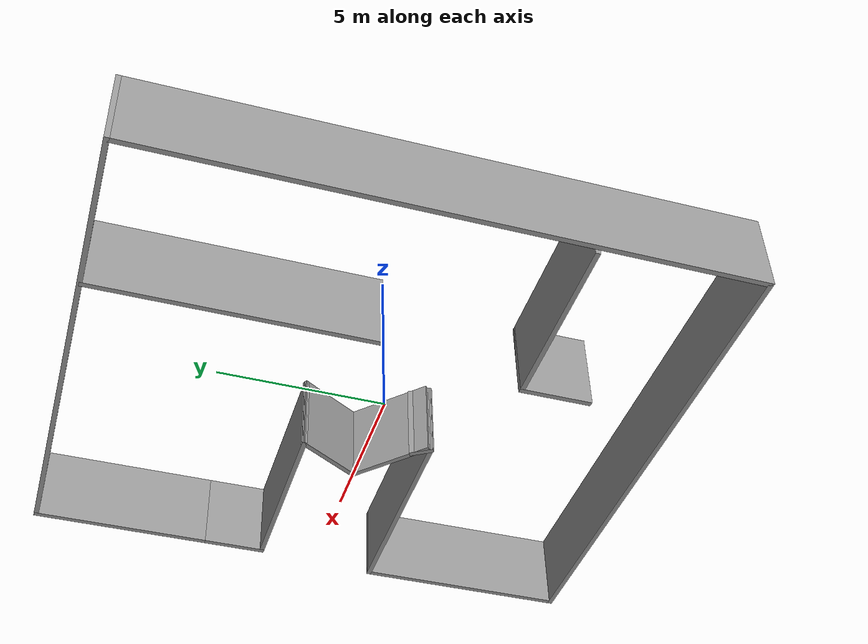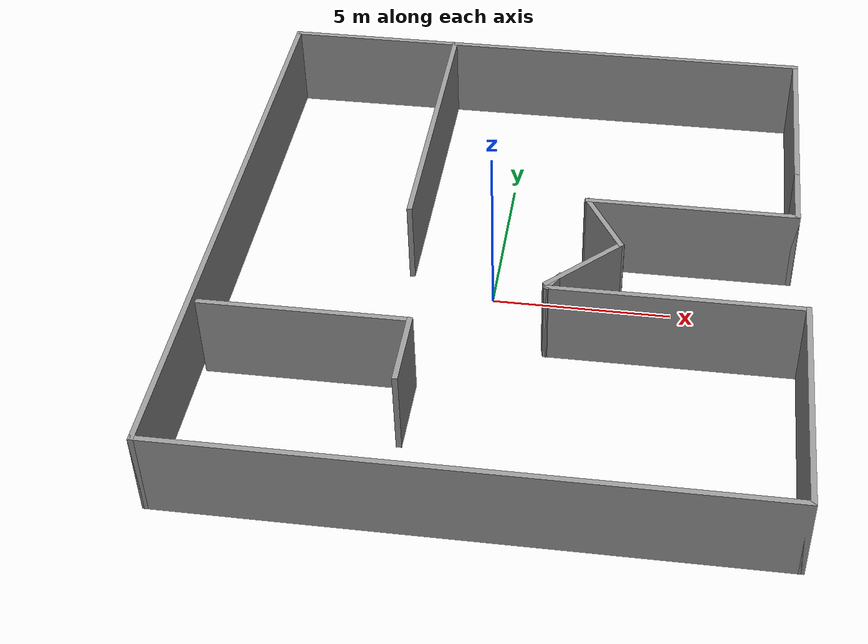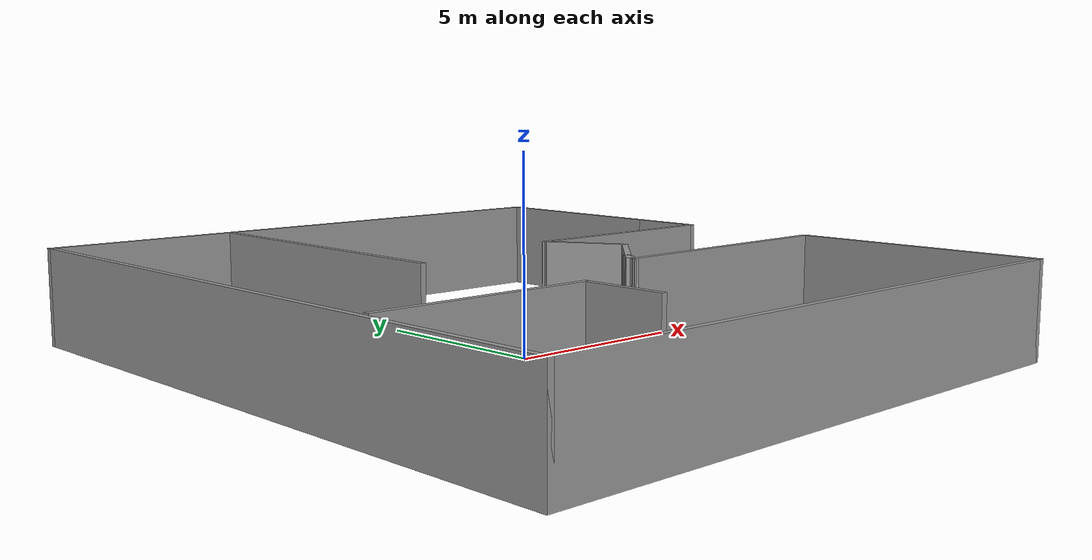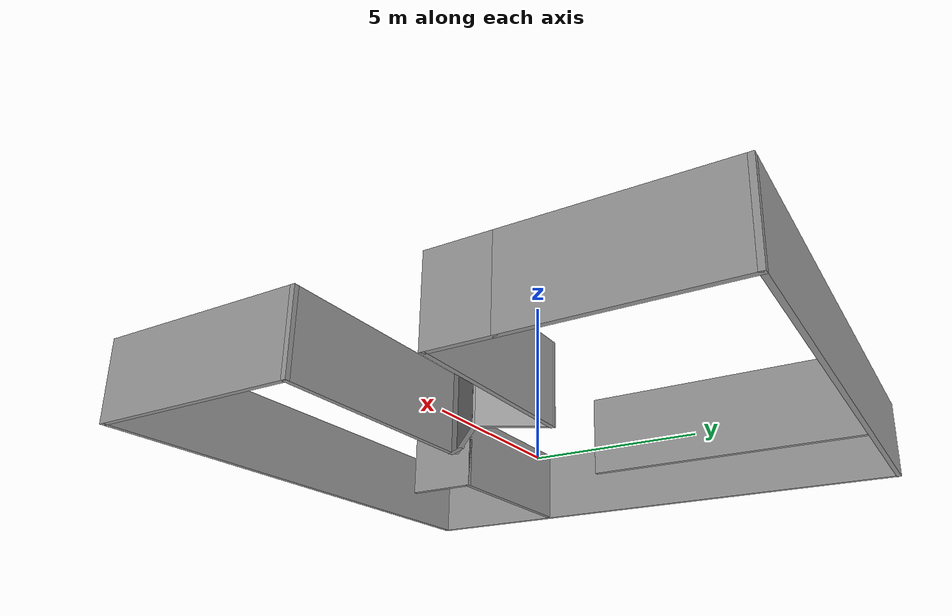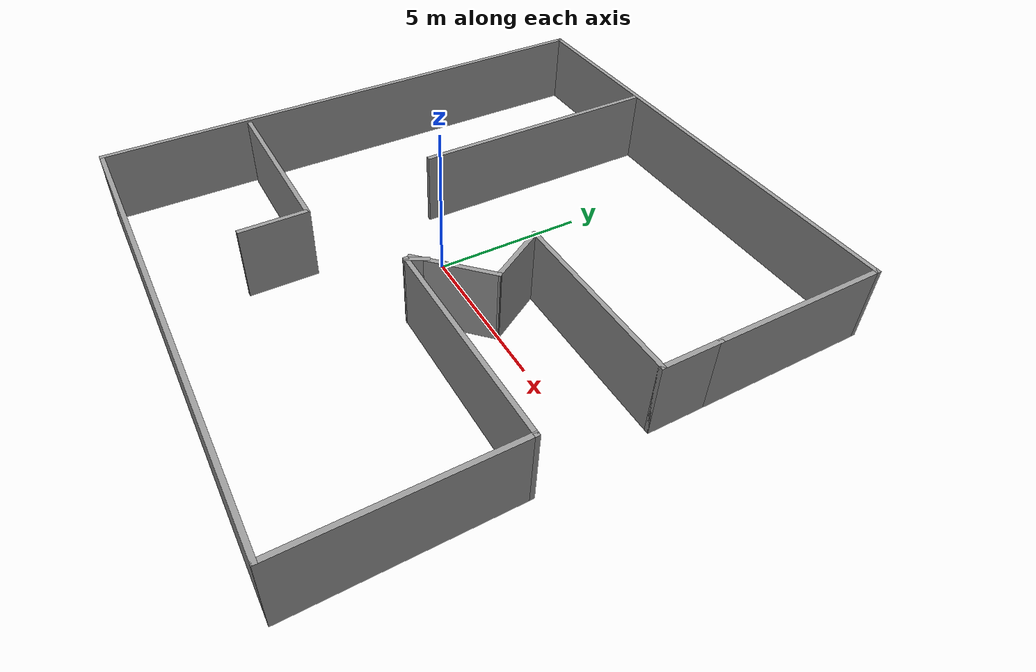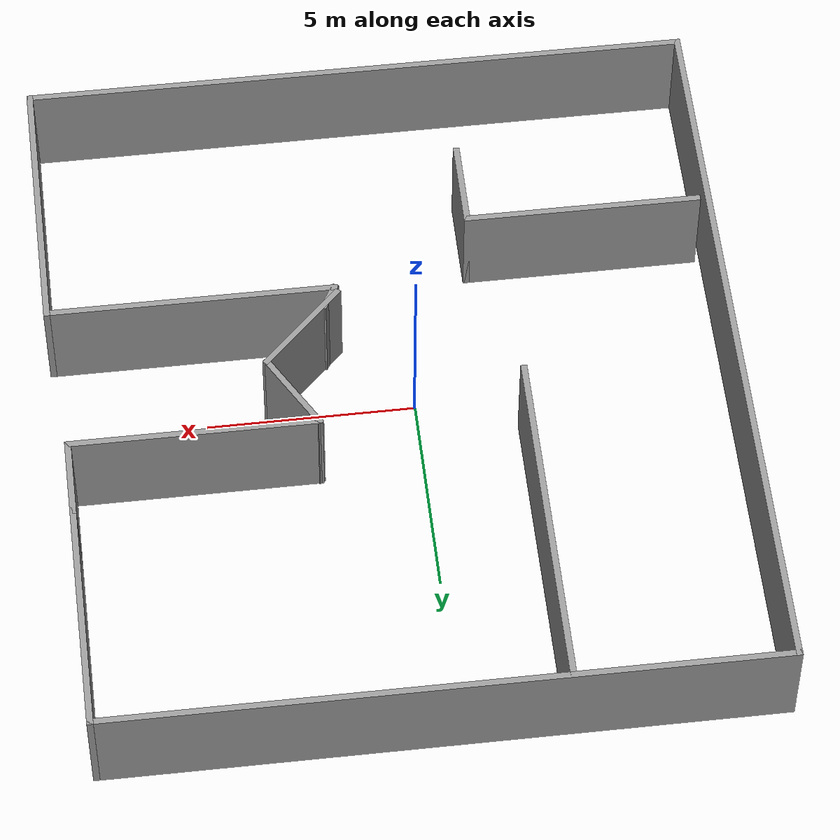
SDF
<?xml version='1.0'?>
<sdf version='1.6'>
  <model name='office'>
    <pose frame=''>0.508477 0.332131 0 0 -0 0</pose>
    <link name='Wall_1'>
      <collision name='Wall_1_Collision'>
        <geometry>
          <box>
            <size>2.75 0.15 2.5</size>
          </box>
        </geometry>
        <pose frame=''>0 0 1.25 0 -0 0</pose>
      </collision>
      <visual name='Wall_1_Visual'>
        <pose frame=''>0 0 1.25 0 -0 0</pose>
        <geometry>
          <box>
            <size>2.75 0.15 2.5</size>
          </box>
        </geometry>
        <material>
          <script>
            <uri>file://media/materials/scripts/gazebo.material</uri>
            <name>Gazebo/Grey</name>
          </script>
          <ambient>1 1 1 1</ambient>
        </material>
      </visual>
      <pose frame=''>2.08076 -1.26289 0 0 -0 0.785398</pose>
    </link>
    <link name='Wall_10'>
      <collision name='Wall_10_Collision'>
        <geometry>
          <box>
            <size>7 0.15 2.5</size>
          </box>
        </geometry>
        <pose frame=''>0 0 1.25 0 -0 0</pose>
      </collision>
      <visual name='Wall_10_Visual'>
        <pose frame=''>0 0 1.25 0 -0 0</pose>
        <geometry>
          <box>
            <size>7 0.15 2.5</size>
          </box>
        </geometry>
        <material>
          <script>
            <uri>file://media/materials/scripts/gazebo.material</uri>
            <name>Gazebo/Grey</name>
          </script>
          <ambient>1 1 1 1</ambient>
        </material>
      </visual>
      <pose frame=''>4.625 -2.325 0 0 -0 3.14159</pose>
    </link>
    <link name='Wall_11'>
      <collision name='Wall_11_Collision'>
        <geometry>
          <box>
            <size>0.75 0.15 2.5</size>
          </box>
        </geometry>
        <pose frame=''>0 0 1.25 0 -0 0</pose>
      </collision>
      <visual name='Wall_11_Visual'>
        <pose frame=''>0 0 1.25 0 -0 0</pose>
        <geometry>
          <box>
            <size>0.75 0.15 2.5</size>
          </box>
        </geometry>
        <material>
          <script>
            <uri>file://media/materials/scripts/gazebo.material</uri>
            <name>Gazebo/Grey</name>
          </script>
          <ambient>1 1 1 1</ambient>
        </material>
      </visual>
      <pose frame=''>1.35 -2.06519 0 0 -0 1.0472</pose>
    </link>
    <link name='Wall_13'>
      <collision name='Wall_13_Collision'>
        <geometry>
          <box>
            <size>8.5 0.15 2.5</size>
          </box>
        </geometry>
        <pose frame=''>0 0 1.25 0 -0 0</pose>
      </collision>
      <visual name='Wall_13_Visual'>
        <pose frame=''>0 0 1.25 0 -0 0</pose>
        <geometry>
          <box>
            <size>8.5 0.15 2.5</size>
          </box>
        </geometry>
        <material>
          <script>
            <uri>file://media/materials/scripts/gazebo.material</uri>
            <name>Gazebo/Grey</name>
          </script>
          <ambient>1 1 1 1</ambient>
        </material>
      </visual>
      <pose frame=''>-2.96935 4.69042 0 0 0 -1.5708</pose>
    </link>
    <link name='Wall_15'>
      <collision name='Wall_15_Collision'>
        <geometry>
          <box>
            <size>5.75 0.15 2.5</size>
          </box>
        </geometry>
        <pose frame=''>0 0 1.25 0 -0 0</pose>
      </collision>
      <visual name='Wall_15_Visual'>
        <pose frame=''>0 0 1.25 0 -0 0</pose>
        <geometry>
          <box>
            <size>5.75 0.15 2.5</size>
          </box>
        </geometry>
        <material>
          <script>
            <uri>file://media/materials/scripts/gazebo.material</uri>
            <name>Gazebo/Grey</name>
          </script>
          <ambient>1 1 1 1</ambient>
        </material>
      </visual>
      <pose frame=''>-4.98083 -4.01237 0 0 -0 0</pose>
    </link>
    <link name='Wall_16'>
      <collision name='Wall_16_Collision'>
        <geometry>
          <box>
            <size>2.25 0.15 2.5</size>
          </box>
        </geometry>
        <pose frame=''>0 0 1.25 0 -0 0</pose>
      </collision>
      <visual name='Wall_16_Visual'>
        <pose frame=''>0 0 1.25 0 -0 0</pose>
        <geometry>
          <box>
            <size>2.25 0.15 2.5</size>
          </box>
        </geometry>
        <material>
          <script>
            <uri>file://media/materials/scripts/gazebo.material</uri>
            <name>Gazebo/Grey</name>
          </script>
          <ambient>1 1 1 1</ambient>
        </material>
      </visual>
      <pose frame=''>-2.18083 -5.06237 0 0 0 -1.5708</pose>
    </link>
    <link name='Wall_2'>
      <collision name='Wall_2_Collision'>
        <geometry>
          <box>
            <size>2.25 0.15 2.5</size>
          </box>
        </geometry>
        <pose frame=''>0 0 1.25 0 -0 0</pose>
      </collision>
      <visual name='Wall_2_Visual'>
        <pose frame=''>0 0 1.25 0 -0 0</pose>
        <geometry>
          <box>
            <size>2.25 0.15 2.5</size>
          </box>
        </geometry>
        <material>
          <script>
            <uri>file://media/materials/scripts/gazebo.material</uri>
            <name>Gazebo/Grey</name>
          </script>
          <ambient>1 1 1 1</ambient>
        </material>
      </visual>
      <pose frame=''>2.475 0.565673 0 0 -0 2.0944</pose>
    </link>
    <link name='Wall_3'>
      <collision name='Wall_3_Collision'>
        <geometry>
          <box>
            <size>6 0.15 2.5</size>
          </box>
        </geometry>
        <pose frame=''>0 0 1.25 0 -0 0</pose>
      </collision>
      <visual name='Wall_3_Visual'>
        <pose frame=''>0 0 1.25 0 -0 0</pose>
        <geometry>
          <box>
            <size>6 0.15 2.5</size>
          </box>
        </geometry>
        <material>
          <script>
            <uri>file://media/materials/scripts/gazebo.material</uri>
            <name>Gazebo/Grey</name>
          </script>
          <ambient>1 1 1 1</ambient>
        </material>
      </visual>
      <pose frame=''>4.875 1.475 0 0 -0 0</pose>
    </link>
    <link name='Wall_4'>
      <collision name='Wall_4_Collision'>
        <geometry>
          <box>
            <size>2 0.15 2.5</size>
          </box>
        </geometry>
        <pose frame=''>0 0 1.25 0 -0 0</pose>
      </collision>
      <visual name='Wall_4_Visual'>
        <pose frame=''>0 0 1.25 0 -0 0</pose>
        <geometry>
          <box>
            <size>2 0.15 2.5</size>
          </box>
        </geometry>
        <material>
          <script>
            <uri>file://media/materials/scripts/gazebo.material</uri>
            <name>Gazebo/Grey</name>
          </script>
          <ambient>1 1 1 1</ambient>
        </material>
      </visual>
      <pose frame=''>7.8 2.4 0 0 -0 1.5708</pose>
    </link>
    <link name='Wall_5'>
      <collision name='Wall_5_Collision'>
        <geometry>
          <box>
            <size>5.75 0.15 2.5</size>
          </box>
        </geometry>
        <pose frame=''>0 0 1.25 0 -0 0</pose>
      </collision>
      <visual name='Wall_5_Visual'>
        <pose frame=''>0 0 1.25 0 -0 0</pose>
        <geometry>
          <box>
            <size>5.75 0.15 2.5</size>
          </box>
        </geometry>
        <material>
          <script>
            <uri>file://media/materials/scripts/gazebo.material</uri>
            <name>Gazebo/Grey</name>
          </script>
          <ambient>1 1 1 1</ambient>
        </material>
      </visual>
      <pose frame=''>7.8 6.125 0 0 -0 1.5708</pose>
    </link>
    <link name='Wall_6'>
      <collision name='Wall_6_Collision'>
        <geometry>
          <box>
            <size>16 0.15 2.5</size>
          </box>
        </geometry>
        <pose frame=''>0 0 1.25 0 -0 0</pose>
      </collision>
      <visual name='Wall_6_Visual'>
        <pose frame=''>0 0 1.25 0 -0 0</pose>
        <geometry>
          <box>
            <size>16 0.15 2.5</size>
          </box>
        </geometry>
        <material>
          <script>
            <uri>file://media/materials/scripts/gazebo.material</uri>
            <name>Gazebo/Grey</name>
          </script>
          <ambient>1 1 1 1</ambient>
        </material>
      </visual>
      <pose frame=''>-0.125 8.925 0 0 -0 3.14159</pose>
    </link>
    <link name='Wall_7'>
      <collision name='Wall_7_Collision'>
        <geometry>
          <box>
            <size>18 0.15 2.5</size>
          </box>
        </geometry>
        <pose frame=''>0 0 1.25 0 -0 0</pose>
      </collision>
      <visual name='Wall_7_Visual'>
        <pose frame=''>0 0 1.25 0 -0 0</pose>
        <geometry>
          <box>
            <size>18 0.15 2.5</size>
          </box>
        </geometry>
        <material>
          <script>
            <uri>file://media/materials/scripts/gazebo.material</uri>
            <name>Gazebo/Grey</name>
          </script>
          <ambient>1 1 1 1</ambient>
        </material>
      </visual>
      <pose frame=''>-8.05 0 0 0 0 -1.5708</pose>
    </link>
    <link name='Wall_8'>
      <collision name='Wall_8_Collision'>
        <geometry>
          <box>
            <size>16.25 0.15 2.5</size>
          </box>
        </geometry>
        <pose frame=''>0 0 1.25 0 -0 0</pose>
      </collision>
      <visual name='Wall_8_Visual'>
        <pose frame=''>0 0 1.25 0 -0 0</pose>
        <geometry>
          <box>
            <size>16.25 0.15 2.5</size>
          </box>
        </geometry>
        <material>
          <script>
            <uri>file://media/materials/scripts/gazebo.material</uri>
            <name>Gazebo/Grey</name>
          </script>
          <ambient>1 1 1 1</ambient>
        </material>
      </visual>
      <pose frame=''>0 -8.925 0 0 -0 0</pose>
    </link>
    <link name='Wall_9'>
      <collision name='Wall_9_Collision'>
        <geometry>
          <box>
            <size>6.75 0.15 2.5</size>
          </box>
        </geometry>
        <pose frame=''>0 0 1.25 0 -0 0</pose>
      </collision>
      <visual name='Wall_9_Visual'>
        <pose frame=''>0 0 1.25 0 -0 0</pose>
        <geometry>
          <box>
            <size>6.75 0.15 2.5</size>
          </box>
        </geometry>
        <material>
          <script>
            <uri>file://media/materials/scripts/gazebo.material</uri>
            <name>Gazebo/Grey</name>
          </script>
          <ambient>1 1 1 1</ambient>
        </material>
      </visual>
      <pose frame=''>8.05 -5.625 0 0 -0 1.5708</pose>
    </link>
    <static>1</static>
  </model>
</sdf>
